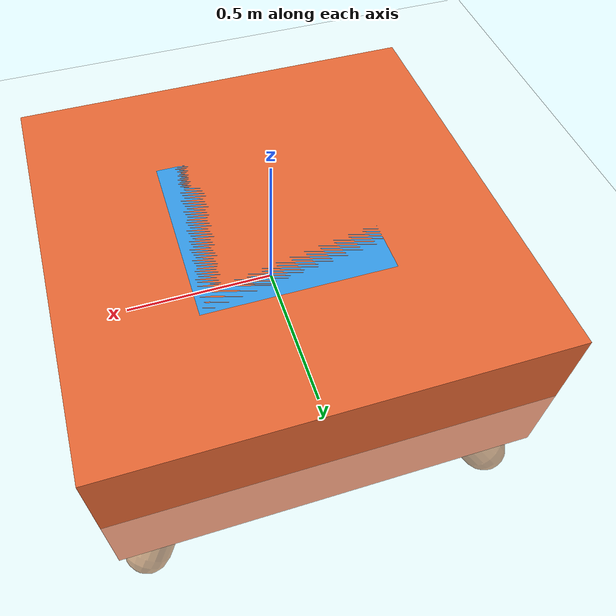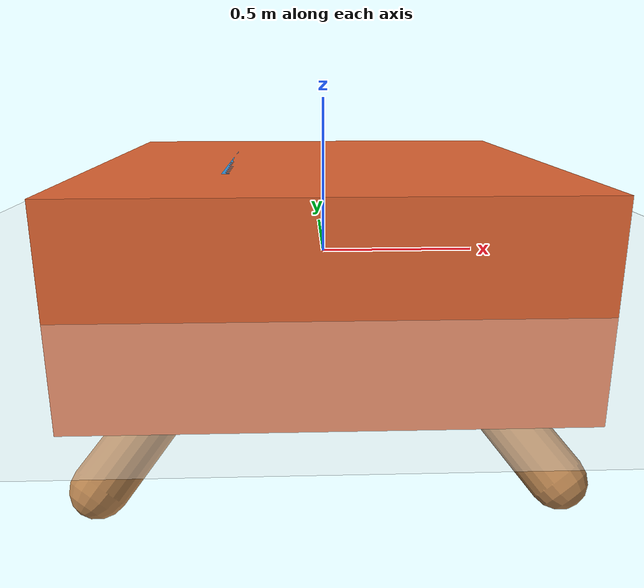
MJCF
<mujoco model="dex-gripper">
  <asset>
    <texture name="skybox" type="skybox" builtin="gradient" rgb1=".2 .3 .4" rgb2="0 0 0" width="800" height="800" mark="random" markrgb="1 1 1"/>
    <texture name="grid" type="2d" builtin="checker" rgb1=".2 .1 .2" rgb2=".3 .2 .3" width="300" height="300" mark="edge" markrgb=".3 .2 .3"/>
    <material name="grid" texture="grid" texrepeat="1 1" texuniform="true" reflectance=".2"/>
    <material name="self" rgba=".7 .5 .3 1"/>
  </asset>
  <visual>
    <headlight ambient=".4 .4 .4" diffuse=".8 .8 .8" specular="0.1 0.1 0.1"/>
    <map znear=".001"/>
    <quality shadowsize="16384"/>
  </visual>
  <compiler angle="degree" coordinate="global" inertiafromgeom="true"/>
  <option integrator="RK4" timestep="0.01"/>
  <default>
    <joint armature="1" damping="1" limited="true"/>
    <geom conaffinity="0" condim="3" density="5.0" friction="1 0.5 0.5" margin="0.01" rgba=".7 .5 .3 1"/>
  </default>
  <worldbody>
    <light cutoff="100" diffuse="1 1 1" dir="0.3 0 -1.3" directional="true" exponent="1" pos="-30 0 130" specular=".1 .1 .1"/>
    <geom conaffinity="1" condim="3" name="floor" pos="0 0 0" rgba="1 1 1 1" size="200 200 .125" type="plane" material="grid"/>
    <body name="0_1" pos="-1.0 -1.0 2.7" gravcomp="1">
      <camera name="track" mode="fixed" pos="0 10 5" quat="0 0 0.547 0.892"/>

      <geom name="torso_1" type="ellipsoid"
            size="0.25 0.25 0.15" pos="0 0 0"/>

      <joint name="root_x_1" type="slide" axis="1 0 0" limited="false"/>
      <joint name="root_y_1" type="slide" axis="0 1 0" limited="false"/>
      <joint name="root_z_1" type="slide" axis="0 0 1" limited="false"/>

      <body name="1_1" pos="0 0 0" gravcomp="1">
        <joint name="1_joint_1" axis="-0.6124 0.6124 0"
               type="hinge" range="-30 30"
               pos="0.177 0.177 0"/>
        <geom fromto="0.177 0.177 0   0.623 0.623 -0.5"
              type="capsule" size="0.08"/>
      </body>

      <body name="2_1" pos="0 0 0" gravcomp="1">
        <joint name="2_joint_1" axis="-0.6124 -0.6124 0"
               type="hinge" range="-30 30"
               pos="-0.177 0.177 0"/>
        <geom fromto="-0.177 0.177 0   -0.623 0.623 -0.5"
              type="capsule" size="0.08"/>
      </body>

      <body name="3_1" pos="0 0 0" gravcomp="1">
        <joint name="3_joint_1" axis="0.6124 -0.6124 0"
               type="hinge" range="-30 30"
               pos="-0.177 -0.177 0"/>
        <geom fromto="-0.177 -0.177 0   -0.623 -0.623 -0.5"
              type="capsule" size="0.08"/>
      </body>

      <body name="4_1" pos="0 0 0" gravcomp="1">
        <joint name="4_joint_1" axis="0.6124 0.6124 0"
               type="hinge" range="-30 30"
               pos="0.177 -0.177 0"/>
        <geom fromto="0.177 -0.177 0   0.623 -0.623 -0.5"
              type="capsule" size="0.08"/>
      </body>

    </body>
    <body name="0_2" pos="1.0 1.0 2.7" gravcomp="1">

      <geom name="torso_2" type="ellipsoid"
            size="0.25 0.25 0.15" pos="0 0 0"/>

      <joint name="root_x_2" type="slide" axis="1 0 0" limited="false"/>
      <joint name="root_y_2" type="slide" axis="0 1 0" limited="false"/>
      <joint name="root_z_2" type="slide" axis="0 0 1" limited="false"/>

      <body name="1_2" pos="0 0 0" gravcomp="1">
        <joint name="1_joint_2" axis="-0.6124 0.6124 0"
               type="hinge" range="-30 30"
               pos="0.177 0.177 0"/>
        <geom fromto="0.177 0.177 0   0.623 0.623 -0.5"
              type="capsule" size="0.08"/>
      </body>

      <body name="2_2" pos="0 0 0" gravcomp="1">
        <joint name="2_joint_2" axis="-0.6124 -0.6124 0"
               type="hinge" range="-30 30"
               pos="-0.177 0.177 0"/>
        <geom fromto="-0.177 0.177 0   -0.623 0.623 -0.5"
              type="capsule" size="0.08"/>
      </body>

      <body name="3_2" pos="0 0 0" gravcomp="1">
        <joint name="3_joint_2" axis="0.6124 -0.6124 0"
               type="hinge" range="-30 30"
               pos="-0.177 -0.177 0"/>
        <geom fromto="-0.177 -0.177 0   -0.623 -0.623 -0.5"
              type="capsule" size="0.08"/>
      </body>

      <body name="4_2" pos="0 0 0" gravcomp="1">
        <joint name="4_joint_2" axis="0.6124 0.6124 0"
               type="hinge" range="-30 30"
               pos="0.177 -0.177 0"/>
        <geom fromto="0.177 -0.177 0   0.623 -0.623 -0.5"
              type="capsule" size="0.08"/>
      </body>

    </body>
    <body name="box_1" pos="0 0 0">
      <freejoint name="box_1_joint"/>

      <geom name="box_1"
            type="box"
            size="0.3 0.3 0.3"
            rgba="0.2 0.6 0.9 1.0"
            contype="1"
            conaffinity="1"
            density="10"
            friction="2.5 0.1 0.05"/>
    </body>

    <body name="box_2" pos="3.0 0 0.4">
      <freejoint name="box_2_joint"/>

      <geom name="box_2"
            type="box"
            quat="0 0 0 1"
            size="0.7 0.7 0.3"
            rgba="0.9 0.4 0.2 1.0"
            contype="1"
            conaffinity="1"
            density="10"
            friction="2.5 0.1 0.05"/>
    </body>

  </worldbody>
  <actuator>
    <motor name="root_x_motor_1" joint="root_x_1" gear="50" ctrllimited="true" ctrlrange="-1 1"/>
    <motor name="root_y_motor_1" joint="root_y_1" gear="50" ctrllimited="true" ctrlrange="-1 1"/>
    <motor name="root_z_motor_1" joint="root_z_1" gear="50" ctrllimited="true" ctrlrange="-1 1"/>
    <motor ctrllimited="true" ctrlrange="-1.0 1.0" joint="1_joint_1" gear="50" name="1_joint_1"/>
    <motor ctrllimited="true" ctrlrange="-1.0 1.0" joint="2_joint_1" gear="50" name="2_joint_1"/>
    <motor ctrllimited="true" ctrlrange="-1.0 1.0" joint="3_joint_1" gear="50" name="3_joint_1"/>
    <motor ctrllimited="true" ctrlrange="-1.0 1.0" joint="4_joint_1" gear="50" name="4_joint_1"/>
    <motor name="root_x_motor_2" joint="root_x_2" gear="50" ctrllimited="true" ctrlrange="-1 1"/>
    <motor name="root_y_motor_2" joint="root_y_2" gear="50" ctrllimited="true" ctrlrange="-1 1"/>
    <motor name="root_z_motor_2" joint="root_z_2" gear="50" ctrllimited="true" ctrlrange="-1 1"/>
    <motor ctrllimited="true" ctrlrange="-1.0 1.0" joint="1_joint_2" gear="50" name="1_joint_2"/>
    <motor ctrllimited="true" ctrlrange="-1.0 1.0" joint="2_joint_2" gear="50" name="2_joint_2"/>
    <motor ctrllimited="true" ctrlrange="-1.0 1.0" joint="3_joint_2" gear="50" name="3_joint_2"/>
    <motor ctrllimited="true" ctrlrange="-1.0 1.0" joint="4_joint_2" gear="50" name="4_joint_2"/>
  </actuator>
</mujoco>
